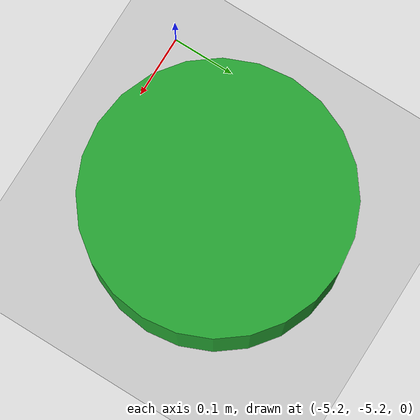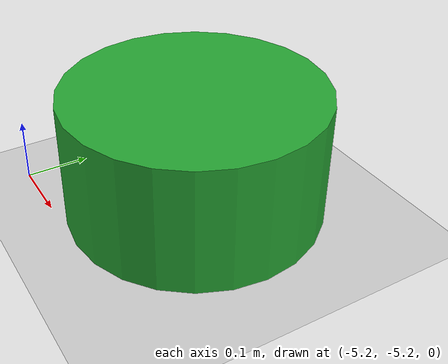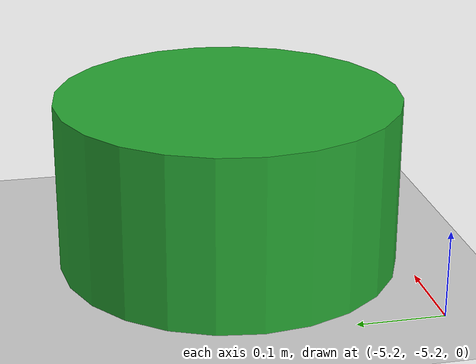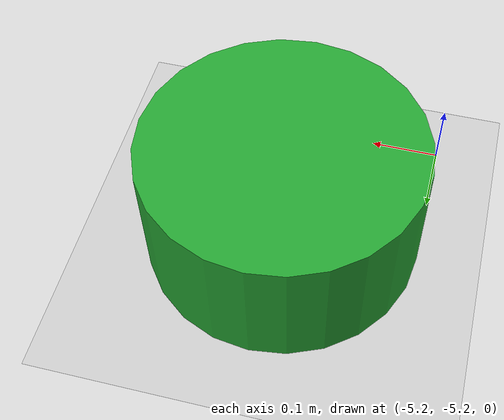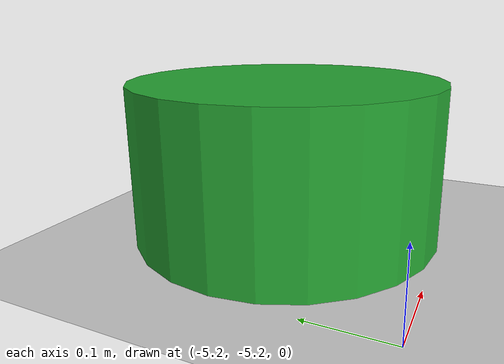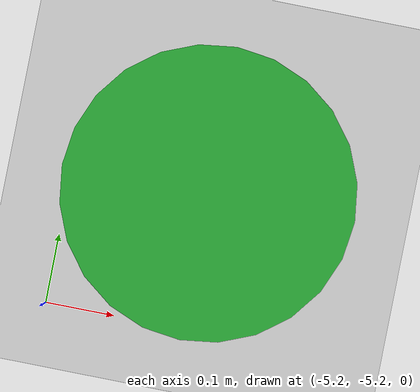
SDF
<?xml version="1.0" ?>
<sdf version="1.4">
  <world name="default">
    <!-- A global light source -->
    <include>
      <uri>model://sun</uri>
    </include>
    <!-- A ground plane -->
    <include>
      <uri>model://ground_plane</uri>
    </include>
    <!-- Own physics settings to speed up simulation -->
    <physics type='ode'>
      <max_step_size>0.01</max_step_size>
      <real_time_factor>1</real_time_factor>
    </physics>

		<model name='point_goal'>
			<pose>-5 -5 0.1 0 0 0</pose>
			<link name='link'>
				<inertial>
					<mass>1</mass>
				</inertial>
				<visual name='visual'>
					<geometry>
						<cylinder>
								<radius>0.2</radius>
								<length>0.2</length>
						</cylinder>
					</geometry>
					<material>
						<script>
							<uri>file://media/materials/scripts/gazebo.material</uri>
							<name>Gazebo/Green</name>
						</script>
					</material>
				</visual>
				<velocity_decay>
					<linear>0</linear>
					<angular>0</angular>
				</velocity_decay>
				<self_collide>0</self_collide>
				<kinematic>0</kinematic>
				<gravity>0</gravity>
			</link>
		</model>

  </world>
</sdf>
